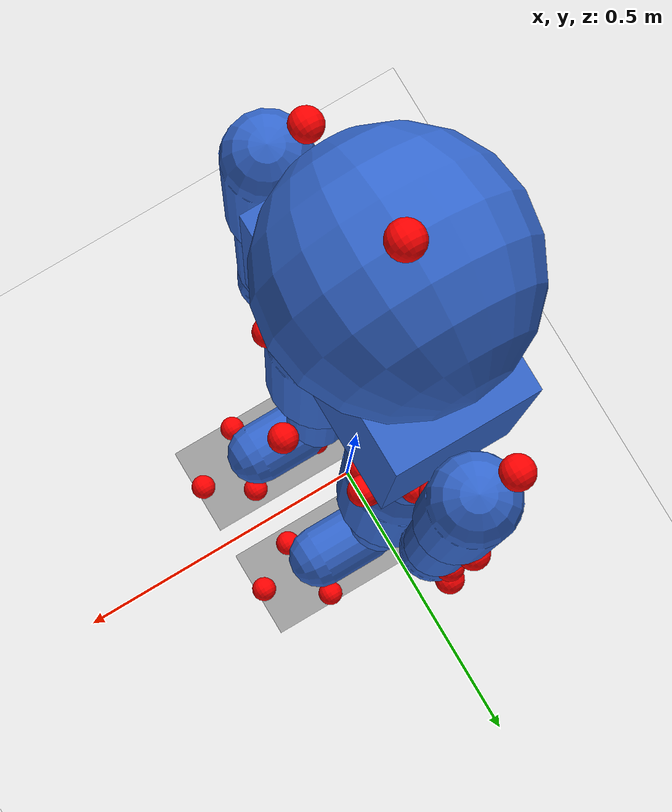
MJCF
<mujoco model="C:\Users\aleks\Desktop\Aleksie kerefeke\master\RS projekat - RL politika ucenja joystick\mujoco-bipedal-joystick-walker\generated_models\human_male_180cm_75kg_base">
  <compiler angle="radian"/>

  <option timestep="0.005" integrator="implicitfast" iterations="4" ls_iterations="5"/>

  <size nkey="2"/>

  <visual>
    <global azimuth="120" elevation="-20" offwidth="2560" offheight="1440"/>
    <map force="0.1" zfar="30"/>
    <rgba haze="0.15 0.25 0.35 1"/>
  </visual>

  <statistic extent="2.2" center="0 0 0.9"/>

  <asset>
    <texture type="2d" colorspace="auto" name="groundplane" builtin="checker" rgb1="1 1 1" rgb2="0.85 0.85 0.85" width="300" height="300"/>
    <material name="groundplane" texture="groundplane" texuniform="true" texrepeat="6 6"/>
  </asset>

  <worldbody>
    <geom name="floor" size="0 0 0.01" type="plane" conaffinity="0" friction="0.8" material="groundplane"/>
    <light pos="0 0 3" dir="0 0 -1" diffuse="0.8 0.8 0.8"/>
    <body name="thorax" pos="0 0 1.51881" quat="0.707107 0.707107 0 0">
      <inertial pos="0 -0.188512 -0.00135864" quat="0.718249 0.690455 -0.0591617 -0.062367" mass="22.8" diaginertia="0.469541 0.340997 0.280826"/>
      <joint type="free"/>
      <geom size="0.0849153 0.169831 0.153051" pos="0 -0.169831 0" type="box" contype="0" conaffinity="0" rgba="0.2 0.4 0.8 1"/>
      <site name="seventh_cervicale" pos="-0.0732203 0.0264407 0" size="0.02" rgba="1 0 0 1"/>
      <site name="suprasternale" pos="0.0518644 -0.039661 0" size="0.02" rgba="1 0 0 1"/>
      <site name="acromion_right" pos="-0.0274576 -0.0457627 0.209492" size="0.02" rgba="1 0 0 1"/>
      <site name="acromion_left" pos="-0.0274576 -0.0457627 -0.209492" size="0.02" rgba="1 0 0 1"/>
      <site name="shoulder_joint_centre_right" pos="0.019322 -0.0844068 0.209492" size="0.02" rgba="1 0 0 1"/>
      <site name="shoulder_joint_centre_left" pos="0.019322 -0.0844068 -0.209492" size="0.02" rgba="1 0 0 1"/>
      <site name="thoracic_joint_centre" pos="0 -0.339661 0" size="0.02" rgba="1 0 0 1"/>
      <site name="centre_of_mass_thorax" pos="0 -0.188136 0.00101695" size="0.02" rgba="1 0 0 1"/>
      <body name="head">
        <inertial pos="0.00565424 0.150968 0.000282712" quat="0.526977 0.447232 -0.539459 0.480898" mass="5.025" diaginertia="0.0361625 0.0317533 0.0174302"/>
        <joint name="head_x" pos="0 0 0" axis="1 0 0" stiffness="12" range="-0.785398 0.785398" armature="0.003" damping="2" frictionloss="0.3"/>
        <joint name="head_y" pos="0 0 0" axis="0 1 0" stiffness="12" range="-1.39626 1.39626" armature="0.003" damping="2" frictionloss="0.3"/>
        <joint name="head_z" pos="0 0 0" axis="0 0 1" stiffness="12" range="-1.0472 1.309" armature="0.003" damping="2" frictionloss="0.3"/>
        <geom size="0.141356" pos="0 0.141356 0" contype="0" conaffinity="0" rgba="0.2 0.4 0.8 1"/>
        <site name="head_vertex" pos="0 0.281695 0" size="0.02" rgba="1 0 0 1"/>
        <site name="sellion" pos="0.10678 0.175932 0" size="0.02" rgba="1 0 0 1"/>
        <site name="occiput" pos="-0.0742373 0.101695 0" size="0.02" rgba="1 0 0 1"/>
        <site name="centre_of_mass_head" pos="-0.00610169 0.151525 0" size="0.02" rgba="1 0 0 1"/>
      </body>
      <body name="abdomen" pos="0 -0.339661 0">
        <inertial pos="0.0270264 -0.0554349 -0.00506746" quat="0.735971 0.00609623 0.0124617 0.67687" mass="2.175" diaginertia="0.0223941 0.0149081 0.00820008"/>
        <joint name="abdomen_x" pos="0 0 0" axis="1 0 0" stiffness="5000" limited="true" range="-1.74533e-05 1.74533e-05" armature="0.05" damping="80" frictionloss="10"/>
        <joint name="abdomen_y" pos="0 0 0" axis="0 1 0" stiffness="5000" limited="true" range="-1.74533e-05 1.74533e-05" armature="0.05" damping="80" frictionloss="10"/>
        <joint name="abdomen_z" pos="0 0 0" axis="0 0 1" stiffness="5000" limited="true" range="-1.74533e-05 1.74533e-05" armature="0.05" damping="80" frictionloss="10"/>
        <geom size="0.0767797 0.101949" pos="0 -0.0767797 0" type="capsule" contype="0" conaffinity="0" rgba="0.2 0.4 0.8 1"/>
        <site name="midspine_at_tenth_rib_level" pos="-0.0589831 -0.0254237 0" size="0.02" rgba="1 0 0 1"/>
        <site name="tenth_rib_right" pos="0.0335593 -0.0315254 0.149492" size="0.02" rgba="1 0 0 1"/>
        <site name="tenth_rib_left" pos="0.0335593 -0.0315254 -0.149492" size="0.02" rgba="1 0 0 1"/>
        <site name="iliocristale_right" pos="0.020339 -0.0813559 0.159661" size="0.02" rgba="1 0 0 1"/>
        <site name="iliocristale_left" pos="0.020339 -0.0813559 -0.159661" size="0.02" rgba="1 0 0 1"/>
        <site name="anterior_superior_iliac_spine_right" pos="0.0701695 -0.182034 0.113898" size="0.02" rgba="1 0 0 1"/>
        <site name="anterior_superior_iliac_spine_left" pos="0.0701695 -0.182034 -0.113898" size="0.02" rgba="1 0 0 1"/>
        <site name="lumbar_joint_centre" pos="0 -0.153559 0" size="0.02" rgba="1 0 0 1"/>
        <site name="centre_of_mass_abdomen" pos="0.0264407 -0.0559322 0" size="0.02" rgba="1 0 0 1"/>
        <body name="pelvis" pos="0 -0.153559 0">
          <inertial pos="-0.000189153 -0.0266705 -0.000567458" quat="0.511311 0.0473642 0.0743465 0.854862" mass="10.65" diaginertia="0.110225 0.096187 0.0875248"/>
          <joint name="pelvis_x" pos="0 0 0" axis="1 0 0" stiffness="5000" limited="true" range="-1.74533e-05 1.74533e-05" armature="0.05" damping="80" frictionloss="10"/>
          <joint name="pelvis_y" pos="0 0 0" axis="0 1 0" stiffness="5000" limited="true" range="-1.74533e-05 1.74533e-05" armature="0.05" damping="80" frictionloss="10"/>
          <joint name="pelvis_z" pos="0 0 0" axis="0 0 1" stiffness="5000" limited="true" range="-1.74533e-05 1.74533e-05" armature="0.05" damping="80" frictionloss="10"/>
          <geom size="0.0472881 0.119237" pos="0 -0.0472881 0" type="capsule" contype="0" conaffinity="0" rgba="0.2 0.4 0.8 1"/>
          <site name="midpoint_between_postero_superior_iliac_spines" pos="-0.103729 0.00711864 0" size="0.02" rgba="1 0 0 1"/>
          <site name="antero_superior_iliac_spine_right" pos="0.079322 0.00711864 0.113898" size="0.02" rgba="1 0 0 1"/>
          <site name="antero_superior_iliac_spine_left" pos="0.079322 0.00711864 -0.113898" size="0.02" rgba="1 0 0 1"/>
          <site name="symphision" pos="0.125085 -0.0681356 0" size="0.02" rgba="1 0 0 1"/>
          <site name="hip_joint_centre_right" pos="0.0569492 -0.0762712 0.0823729" size="0.02" rgba="1 0 0 1"/>
          <site name="hip_joint_centre_left" pos="0.0569492 -0.0762712 -0.0823729" size="0.02" rgba="1 0 0 1"/>
          <site name="centre_of_mass_pelvis" pos="-0.00305085 -0.0264407 0" size="0.02" rgba="1 0 0 1"/>
          <body name="left_thigh" pos="0 -0.0945763 -0.101012">
            <inertial pos="-0.0180122 -0.188469 -0.0144976" quat="0.530849 0.529475 -0.429159 0.503665" mass="9.225" diaginertia="0.161039 0.150243 0.038756"/>
            <joint name="left_hip_x" pos="0 0 0" axis="1 0 0" range="-0.349066 0.698132" armature="0.01" damping="4" frictionloss="0.3"/>
            <joint name="left_hip_y" pos="0 0 0" axis="0 1 0" range="-0.698132 0.872665" armature="0.01" damping="4" frictionloss="0.3"/>
            <joint name="left_hip_z" pos="0 0 0" axis="0 0 1" range="-0.523599 1.74533" armature="0.01" damping="4" frictionloss="0.3"/>
            <geom size="0.0828814 0.17822" pos="0 -0.219661 0" quat="0.707107 -0.707107 0 0" type="capsule" contype="0" conaffinity="0" rgba="0.2 0.4 0.8 1"/>
            <site name="greater_trochanter_left" pos="-0.040678 0.00610169 -0.102712" size="0.02" rgba="1 0 0 1"/>
            <site name="lateral_femoral_epicondyle_left" pos="0 -0.438305 -0.0579661" size="0.02" rgba="1 0 0 1"/>
            <site name="medial_femoral_epicondyle_left" pos="0 -0.439322 0.0579661" size="0.02" rgba="1 0 0 1"/>
            <site name="centre_of_mass_thigh_left" pos="-0.0183051 -0.188136 -0.0142373" size="0.02" rgba="1 0 0 1"/>
            <body name="left_shank" pos="0 -0.439322 0">
              <inertial pos="-0.0211363 -0.180539 -0.00308237" quat="0.64875 0.657637 -0.281288 0.259834" mass="3.6" diaginertia="0.055057 0.0544467 0.00692845"/>
              <joint name="left_knee_z" pos="0 0 0" axis="0 0 1" range="-2.61799 0" armature="0.01" damping="5" frictionloss="0.8"/>
              <geom size="0.0523729 0.193983" pos="0 -0.220169 0" quat="0.707107 -0.707107 0 0" type="capsule" contype="0" conaffinity="0" rgba="0.2 0.4 0.8 1"/>
              <site name="tibiale_head_left" pos="0.0213559 -0.0274576 0.0427119" size="0.02" rgba="1 0 0 1"/>
              <site name="fibula_head_left" pos="0 -0.0233898 -0.0477966" size="0.02" rgba="1 0 0 1"/>
              <site name="sphyrion_left" pos="0.0213559 -0.441356 0.0335593" size="0.02" rgba="1 0 0 1"/>
              <site name="lateral_malleolus_left" pos="-0.0213559 -0.440339 -0.0335593" size="0.02" rgba="1 0 0 1"/>
              <site name="centre_of_mass_shank_left" pos="-0.0213559 -0.181017 -0.00305085" size="0.02" rgba="1 0 0 1"/>
              <body name="left_foot" pos="0 -0.440339 0">
                <inertial pos="0.0709607 -0.0281298 -0.0048061" quat="0.487468 0.581843 0.43977 0.480038" mass="0.9" diaginertia="0.00439861 0.00415298 0.000779968"/>
                <joint name="left_ankle_y" pos="0 0 0" axis="0 1 0" range="-0.523599 0.523599" armature="0.01" damping="10" frictionloss="1"/>
                <joint name="left_ankle_z" pos="0 0 0" axis="0 0 1" range="-0.349066 0.523599" armature="0.01" damping="10" frictionloss="1"/>
                <geom size="0.0513559 0.045" pos="0.070678 0 0" quat="0.707107 0 0.707107 0" type="capsule" contype="0" conaffinity="0" solimp="0.85 0.95 0.005" rgba="0.2 0.4 0.8 1"/>
                <geom name="left_foot_sole" size="0.145 0.012 0.075" pos="0.09 -0.045 0" type="box" friction="1 0.01 0.001" solimp="0.85 0.95 0.005" rgba="0.1 0.1 0.1 0.35"/>
                <site name="calcaneous_left" pos="-0.0467797 -0.0213559 -0.00711864" size="0.02" rgba="1 0 0 1"/>
                <site name="first_metatarsal_head_left" pos="0.148475 -0.0213559 0.0477966" size="0.02" rgba="1 0 0 1"/>
                <site name="fifth_metatarsal_head_left" pos="0.130169 -0.0213559 -0.0610169" size="0.02" rgba="1 0 0 1"/>
                <site name="second_toe_tip_left" pos="0.222712 -0.00915254 0.00101695" size="0.02" rgba="1 0 0 1"/>
                <site name="centre_of_mass_foot_left" pos="0.0457627 -0.0366102 -0.00610169" size="0.02" rgba="1 0 0 1"/>
                <site name="metatarsal_midpoint_left" pos="0.105763 0 0" size="0.02" rgba="1 0 0 1"/>
              </body>
            </body>
          </body>
          <body name="right_thigh" pos="0 -0.0945763 0.101012">
            <inertial pos="-0.0180122 -0.188469 0.0144976" quat="0.429159 0.503665 -0.530849 0.529475" mass="9.225" diaginertia="0.161039 0.150243 0.038756"/>
            <joint name="right_hip_x" pos="0 0 0" axis="1 0 0" range="-0.698132 0.349066" armature="0.01" damping="4" frictionloss="0.3"/>
            <joint name="right_hip_y" pos="0 0 0" axis="0 1 0" range="-0.698132 0.872665" armature="0.01" damping="4" frictionloss="0.3"/>
            <joint name="right_hip_z" pos="0 0 0" axis="0 0 1" range="-0.523599 1.74533" armature="0.01" damping="4" frictionloss="0.3"/>
            <geom size="0.0828814 0.17822" pos="0 -0.219661 0" quat="0.707107 -0.707107 0 0" type="capsule" contype="0" conaffinity="0" rgba="0.2 0.4 0.8 1"/>
            <site name="greater_trochanter_right" pos="-0.040678 0.00610169 0.102712" size="0.02" rgba="1 0 0 1"/>
            <site name="lateral_femoral_epicondyle_right" pos="0 -0.438305 0.0579661" size="0.02" rgba="1 0 0 1"/>
            <site name="medial_femoral_epicondyle_right" pos="0 -0.439322 -0.0579661" size="0.02" rgba="1 0 0 1"/>
            <site name="centre_of_mass_thigh_right" pos="-0.0183051 -0.188136 0.0142373" size="0.02" rgba="1 0 0 1"/>
            <body name="right_shank" pos="0 -0.439322 0">
              <inertial pos="-0.0211363 -0.180539 0.00308237" quat="0.281288 0.259834 -0.64875 0.657637" mass="3.6" diaginertia="0.055057 0.0544467 0.00692845"/>
              <joint name="right_knee_z" pos="0 0 0" axis="0 0 1" range="-2.61799 0" armature="0.01" damping="5" frictionloss="0.8"/>
              <geom size="0.0523729 0.193983" pos="0 -0.220169 0" quat="0.707107 -0.707107 0 0" type="capsule" contype="0" conaffinity="0" rgba="0.2 0.4 0.8 1"/>
              <site name="tibiale_head_right" pos="0.0213559 -0.0274576 -0.0427119" size="0.02" rgba="1 0 0 1"/>
              <site name="fibula_head_right" pos="0 -0.0233898 0.0477966" size="0.02" rgba="1 0 0 1"/>
              <site name="sphyrion_right" pos="0.0213559 -0.441356 -0.0335593" size="0.02" rgba="1 0 0 1"/>
              <site name="lateral_malleolus_right" pos="-0.0213559 -0.440339 0.0335593" size="0.02" rgba="1 0 0 1"/>
              <site name="centre_of_mass_shank_right" pos="-0.0213559 -0.181017 0.00305085" size="0.02" rgba="1 0 0 1"/>
              <body name="right_foot" pos="0 -0.440339 0">
                <inertial pos="0.0709607 -0.0281298 0.0048061" quat="0.581843 0.487468 0.480038 0.43977" mass="0.9" diaginertia="0.00439861 0.00415298 0.000779968"/>
                <joint name="right_ankle_y" pos="0 0 0" axis="0 1 0" range="-0.523599 0.523599" armature="0.01" damping="10" frictionloss="1"/>
                <joint name="right_ankle_z" pos="0 0 0" axis="0 0 1" range="-0.349066 0.523599" armature="0.01" damping="10" frictionloss="1"/>
                <geom size="0.0513559 0.045" pos="0.070678 0 0" quat="0.707107 0 0.707107 0" type="capsule" contype="0" conaffinity="0" solimp="0.85 0.95 0.005" rgba="0.2 0.4 0.8 1"/>
                <geom name="right_foot_sole" size="0.145 0.012 0.075" pos="0.09 -0.045 0" type="box" friction="1 0.01 0.001" solimp="0.85 0.95 0.005" rgba="0.1 0.1 0.1 0.35"/>
                <site name="calcaneous_right" pos="-0.0467797 -0.0213559 0.00711864" size="0.02" rgba="1 0 0 1"/>
                <site name="first_metatarsal_head_right" pos="0.148475 -0.0213559 -0.0477966" size="0.02" rgba="1 0 0 1"/>
                <site name="fifth_metatarsal_head_right" pos="0.130169 -0.0213559 0.0610169" size="0.02" rgba="1 0 0 1"/>
                <site name="second_toe_tip_right" pos="0.222712 -0.00915254 -0.00101695" size="0.02" rgba="1 0 0 1"/>
                <site name="centre_of_mass_foot_right" pos="0.0457627 -0.0366102 0.00610169" size="0.02" rgba="1 0 0 1"/>
                <site name="metatarsal_midpoint_right" pos="0.105763 0 0" size="0.02" rgba="1 0 0 1"/>
              </body>
            </body>
          </body>
        </body>
      </body>
      <body name="left_upper_arm" pos="0.019322 -0.0844068 -0.209492">
        <inertial pos="0.00507051 -0.135777 0.00873254" quat="0.532725 0.445317 -0.440748 0.568892" mass="1.8" diaginertia="0.0133878 0.0120245 0.00186887"/>
        <joint name="left_shoulder_x" pos="0 0 0" axis="1 0 0" stiffness="25" range="-0.872665 3.14159" armature="0.006" damping="3" frictionloss="0.8"/>
        <joint name="left_shoulder_y" pos="0 0 0" axis="0 1 0" stiffness="25" range="-1.5708 1.5708" armature="0.006" damping="3" frictionloss="0.8"/>
        <joint name="left_shoulder_z" pos="0 0 0" axis="0 0 1" stiffness="25" range="-0.872665 3.14159" armature="0.006" damping="3" frictionloss="0.8"/>
        <geom size="0.0513559 0.115169" pos="0 -0.115169 0" quat="0.707107 -0.707107 0 0" type="capsule" contype="0" conaffinity="0" rgba="0.2 0.4 0.8 1"/>
        <site name="lateral_humeral_epicondyle_left" pos="0 -0.262373 -0.0416949" size="0.02" rgba="1 0 0 1"/>
        <site name="medial_humeral_epicondyle_left" pos="0 -0.268475 0.0416949" size="0.02" rgba="1 0 0 1"/>
        <site name="centre_of_mass_upper_arm_left" pos="0.00508475 -0.12 -0.00711864" size="0.02" rgba="1 0 0 1"/>
        <body name="left_forearm" pos="0 -0.281695 0">
          <inertial pos="-0.00374136 -0.120011 -0.00316576" quat="0.701607 0.709256 -0.00145823 0.068567" mass="1.275" diaginertia="0.00834467 0.00827899 0.0012129"/>
          <joint name="left_elbow_z" pos="0 0 0" axis="0 0 1" stiffness="12" range="0 2.61799" armature="0.006" damping="2" frictionloss="0.5"/>
          <geom size="0.0437288 0.122034" pos="0 -0.143898 0" quat="0.707107 -0.707107 0 0" type="capsule" contype="0" conaffinity="0" rgba="0.2 0.4 0.8 1"/>
          <site name="olecranion_left" pos="-0.00813559 0.0142373 0.0223729" size="0.02" rgba="1 0 0 1"/>
          <site name="ulnar_styloid_left" pos="0 -0.288814 0.0335593" size="0.02" rgba="1 0 0 1"/>
          <site name="radial_styloid_left" pos="0 -0.288814 -0.0335593" size="0.02" rgba="1 0 0 1"/>
          <site name="centre_of_mass_forearm_left" pos="0.00305085 -0.12 -0.0040678" size="0.02" rgba="1 0 0 1"/>
          <body name="left_hand" pos="0 -0.287797 0">
            <inertial pos="0.00667119 -0.0682576 -0.00610169" quat="0.782886 0.607421 0.134599 -0.00346203" mass="0.45" diaginertia="0.00114688 0.000954987 0.00037055"/>
            <joint name="left_wrist_y" pos="0 0 0" axis="0 1 0" stiffness="6" range="-1.39626 1.39626" armature="0.003" damping="2" frictionloss="0.3"/>
            <joint name="left_wrist_z" pos="0 0 0" axis="0 0 1" stiffness="6" range="-1.0472 1.0472" armature="0.003" damping="2" frictionloss="0.3"/>
            <geom size="0.0452542 0.0180508" pos="0 -0.040678 0" quat="0.707107 -0.707107 0 0" type="capsule" contype="0" conaffinity="0" rgba="0.2 0.4 0.8 1"/>
            <site name="secnd_metacarpal_head_left" pos="0 -0.0874576 -0.0467797" size="0.02" rgba="1 0 0 1"/>
            <site name="fifth_metacarpal_head_left" pos="0 -0.0762712 0.0467797" size="0.02" rgba="1 0 0 1"/>
            <site name="third_finger_tip_left" pos="0.00711864 -0.192203 0.00101695" size="0.02" rgba="1 0 0 1"/>
            <site name="centre_of_mass_left" pos="0.00711864 -0.0691525 -0.00610169" size="0.02" rgba="1 0 0 1"/>
          </body>
        </body>
      </body>
      <body name="right_upper_arm" pos="0.019322 -0.0844068 0.209492">
        <inertial pos="0.00507051 -0.135777 -0.00873254" quat="0.440748 0.568892 -0.532725 0.445317" mass="1.8" diaginertia="0.0133878 0.0120245 0.00186887"/>
        <joint name="right_shoulder_x" pos="0 0 0" axis="1 0 0" stiffness="25" range="-3.14159 0.872665" armature="0.006" damping="3" frictionloss="0.8"/>
        <joint name="right_shoulder_y" pos="0 0 0" axis="0 1 0" stiffness="25" range="-1.5708 1.5708" armature="0.006" damping="3" frictionloss="0.8"/>
        <joint name="right_shoulder_z" pos="0 0 0" axis="0 0 1" stiffness="25" range="-0.872665 3.14159" armature="0.006" damping="3" frictionloss="0.8"/>
        <geom size="0.0513559 0.115169" pos="0 -0.115169 0" quat="0.707107 -0.707107 0 0" type="capsule" contype="0" conaffinity="0" rgba="0.2 0.4 0.8 1"/>
        <site name="lateral_humeral_epicondyle_right" pos="0 -0.262373 0.0416949" size="0.02" rgba="1 0 0 1"/>
        <site name="medial_humeral_epicondyle_right" pos="0 -0.268475 -0.0416949" size="0.02" rgba="1 0 0 1"/>
        <site name="centre_of_mass_upper_arm_right" pos="0.00508475 -0.12 0.00711864" size="0.02" rgba="1 0 0 1"/>
        <body name="right_forearm" pos="0 -0.281695 0">
          <inertial pos="-0.00374136 -0.120011 0.00316576" quat="0.709256 0.701607 0.068567 -0.00145823" mass="1.275" diaginertia="0.00834467 0.00827899 0.0012129"/>
          <joint name="right_elbow_z" pos="0 0 0" axis="0 0 1" stiffness="12" range="0 2.61799" armature="0.006" damping="2" frictionloss="0.5"/>
          <geom size="0.0437288 0.122034" pos="0 -0.143898 0" quat="0.707107 -0.707107 0 0" type="capsule" contype="0" conaffinity="0" rgba="0.2 0.4 0.8 1"/>
          <site name="olecranion_right" pos="-0.00813559 0.0142373 -0.0223729" size="0.02" rgba="1 0 0 1"/>
          <site name="ulnar_styloid_right" pos="0 -0.288814 -0.0335593" size="0.02" rgba="1 0 0 1"/>
          <site name="radial_styloid_right" pos="0 -0.288814 0.0335593" size="0.02" rgba="1 0 0 1"/>
          <site name="centre_of_mass_forearm_right" pos="0.00305085 -0.12 0.0040678" size="0.02" rgba="1 0 0 1"/>
          <body name="right_hand" pos="0 -0.287797 0">
            <inertial pos="0.00667119 -0.0682576 0.00610169" quat="0.607421 0.782886 -0.00346203 0.134599" mass="0.45" diaginertia="0.00114688 0.000954987 0.00037055"/>
            <joint name="right_wrist_y" pos="0 0 0" axis="0 1 0" stiffness="6" range="-1.39626 1.39626" armature="0.003" damping="2" frictionloss="0.3"/>
            <joint name="right_wrist_z" pos="0 0 0" axis="0 0 1" stiffness="6" range="-1.0472 1.0472" armature="0.003" damping="2" frictionloss="0.3"/>
            <geom size="0.0452542 0.0180508" pos="0 -0.040678 0" quat="0.707107 -0.707107 0 0" type="capsule" contype="0" conaffinity="0" rgba="0.2 0.4 0.8 1"/>
            <site name="secnd_metacarpal_head_right" pos="0 -0.0874576 0.0467797" size="0.02" rgba="1 0 0 1"/>
            <site name="fifth_metacarpal_head_right" pos="0 -0.0762712 -0.0467797" size="0.02" rgba="1 0 0 1"/>
            <site name="third_finger_tip_right" pos="0.00711864 -0.192203 -0.00101695" size="0.02" rgba="1 0 0 1"/>
            <site name="centre_of_mass_right" pos="0.00711864 -0.0691525 0.00610169" size="0.02" rgba="1 0 0 1"/>
          </body>
        </body>
      </body>
    </body>
  </worldbody>

  <contact>
    <exclude body1="thorax" body2="head"/>
    <exclude body1="thorax" body2="abdomen"/>
    <exclude body1="thorax" body2="left_upper_arm"/>
    <exclude body1="thorax" body2="right_upper_arm"/>
    <exclude body1="abdomen" body2="pelvis"/>
    <exclude body1="pelvis" body2="left_thigh"/>
    <exclude body1="pelvis" body2="right_thigh"/>
    <exclude body1="left_thigh" body2="left_shank"/>
    <exclude body1="left_shank" body2="left_foot"/>
    <exclude body1="right_thigh" body2="right_shank"/>
    <exclude body1="right_shank" body2="right_foot"/>
    <exclude body1="left_upper_arm" body2="left_forearm"/>
    <exclude body1="left_forearm" body2="left_hand"/>
    <exclude body1="right_upper_arm" body2="right_forearm"/>
    <exclude body1="right_forearm" body2="right_hand"/>
  </contact>

  <equality>
    <joint name="lock_abdomen_x" joint1="abdomen_x" polycoef="0 1 0 0 0" solref="0.002" solimp="0.999 0.9999 0.0001"/>
    <joint name="lock_abdomen_y" joint1="abdomen_y" polycoef="0 1 0 0 0" solref="0.002" solimp="0.999 0.9999 0.0001"/>
    <joint name="lock_abdomen_z" joint1="abdomen_z" polycoef="0 1 0 0 0" solref="0.002" solimp="0.999 0.9999 0.0001"/>
    <joint name="lock_pelvis_x" joint1="pelvis_x" polycoef="0 1 0 0 0" solref="0.002" solimp="0.999 0.9999 0.0001"/>
    <joint name="lock_pelvis_y" joint1="pelvis_y" polycoef="0 1 0 0 0" solref="0.002" solimp="0.999 0.9999 0.0001"/>
    <joint name="lock_pelvis_z" joint1="pelvis_z" polycoef="0 1 0 0 0" solref="0.002" solimp="0.999 0.9999 0.0001"/>
  </equality>

  <actuator>
    <general name="left_hip_x_position" joint="left_hip_x" ctrllimited="true" ctrlrange="-0.349066 0.698132" forcelimited="true" forcerange="-180 180" biastype="affine" gainprm="100" biasprm="0 -100"/>
    <general name="left_hip_y_position" joint="left_hip_y" ctrllimited="true" ctrlrange="-0.698132 0.872665" forcelimited="true" forcerange="-180 180" biastype="affine" gainprm="100" biasprm="0 -100"/>
    <general name="left_hip_z_position" joint="left_hip_z" ctrllimited="true" ctrlrange="-0.523599 1.74533" forcelimited="true" forcerange="-180 180" biastype="affine" gainprm="100" biasprm="0 -100"/>
    <general name="left_knee_z_position" joint="left_knee_z" ctrllimited="true" ctrlrange="-2.61799 0" forcelimited="true" forcerange="-180 180" biastype="affine" gainprm="120" biasprm="0 -120"/>
    <general name="left_ankle_y_position" joint="left_ankle_y" ctrllimited="true" ctrlrange="-0.523599 0.523599" forcelimited="true" forcerange="-220 220" biastype="affine" gainprm="120" biasprm="0 -120"/>
    <general name="left_ankle_z_position" joint="left_ankle_z" ctrllimited="true" ctrlrange="-0.349066 0.523599" forcelimited="true" forcerange="-220 220" biastype="affine" gainprm="120" biasprm="0 -120"/>
    <general name="right_hip_x_position" joint="right_hip_x" ctrllimited="true" ctrlrange="-0.698132 0.349066" forcelimited="true" forcerange="-180 180" biastype="affine" gainprm="100" biasprm="0 -100"/>
    <general name="right_hip_y_position" joint="right_hip_y" ctrllimited="true" ctrlrange="-0.698132 0.872665" forcelimited="true" forcerange="-180 180" biastype="affine" gainprm="100" biasprm="0 -100"/>
    <general name="right_hip_z_position" joint="right_hip_z" ctrllimited="true" ctrlrange="-0.523599 1.74533" forcelimited="true" forcerange="-180 180" biastype="affine" gainprm="100" biasprm="0 -100"/>
    <general name="right_knee_z_position" joint="right_knee_z" ctrllimited="true" ctrlrange="-2.61799 0" forcelimited="true" forcerange="-180 180" biastype="affine" gainprm="120" biasprm="0 -120"/>
    <general name="right_ankle_y_position" joint="right_ankle_y" ctrllimited="true" ctrlrange="-0.523599 0.523599" forcelimited="true" forcerange="-220 220" biastype="affine" gainprm="120" biasprm="0 -120"/>
    <general name="right_ankle_z_position" joint="right_ankle_z" ctrllimited="true" ctrlrange="-0.349066 0.523599" forcelimited="true" forcerange="-220 220" biastype="affine" gainprm="120" biasprm="0 -120"/>
  </actuator>

  <keyframe>
    <key name="t-pose" qpos="0 0 1.51881 0.707107 0.707107 0 0 0 0 0 0 0 0 0 0 0 0 0 0 0 0 0 0 0 0 0 0 0 1.5708 0 0 0 0 0 -1.5708 0 0 0 0 0"/>
    <key name="a-pose" qpos="0 0 1.51881 0.707107 0.707107 0 0 0 0 0 0 0 0 0 0 0 0 0 0 0 0 0 0 0 0 0 0 0 0.75 0 0 0 0 0 -0.75 0 0 0 0 0"/>
  </keyframe>
</mujoco>
